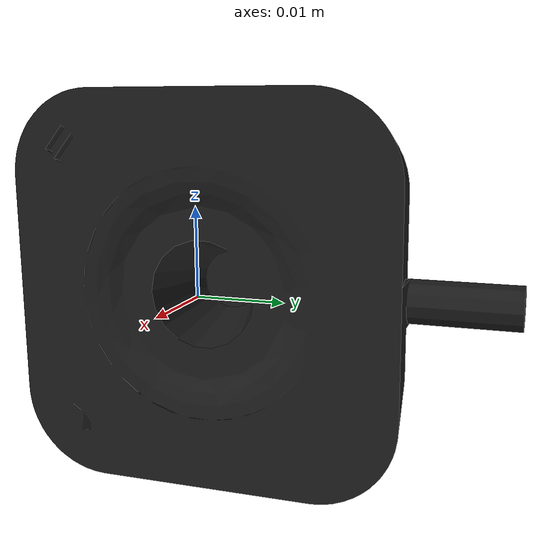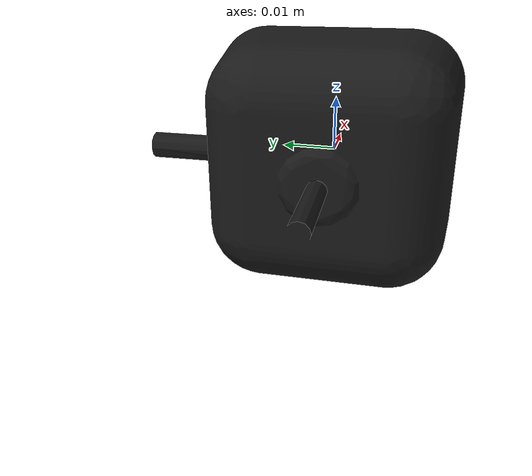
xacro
<robot name="Front_Camera_link"><link name="Front_Camera_link">
    <inertial>
      <origin rpy="0 0 0" xyz="3.63553471578737E-06 0.000213443852909154 -0.00979905092954431" />
      <mass value="0.0346828331927876" />
      <inertia ixx="6.28790547336199E-06" ixy="-2.06834494924545E-09" ixz="1.17994816105049E-09" iyy="6.08020816375924E-06" iyz="3.61787794067701E-08" izz="9.95214453956241E-06" />
    </inertial>
    <visual>
      <origin rpy="-1.57079632649567 1.57079632649567 -1.57079632649567" xyz="0 0 0" />
      <geometry>
        <mesh filename="package://robotican_description/komodo/meshes/Front_Camera_link.STL" />
      </geometry>
      <material name="">
        <color rgba="0.1 0.1 0.1 1" />
      </material>
    </visual>
    <collision>
      <origin rpy="1.57 0 0" xyz="0 0 0" />
      <geometry>
        <mesh filename="package://robotican_description/komodo/meshes/Front_Camera_link.STL" />
      </geometry>
    </collision>
  </link>
  </robot>
